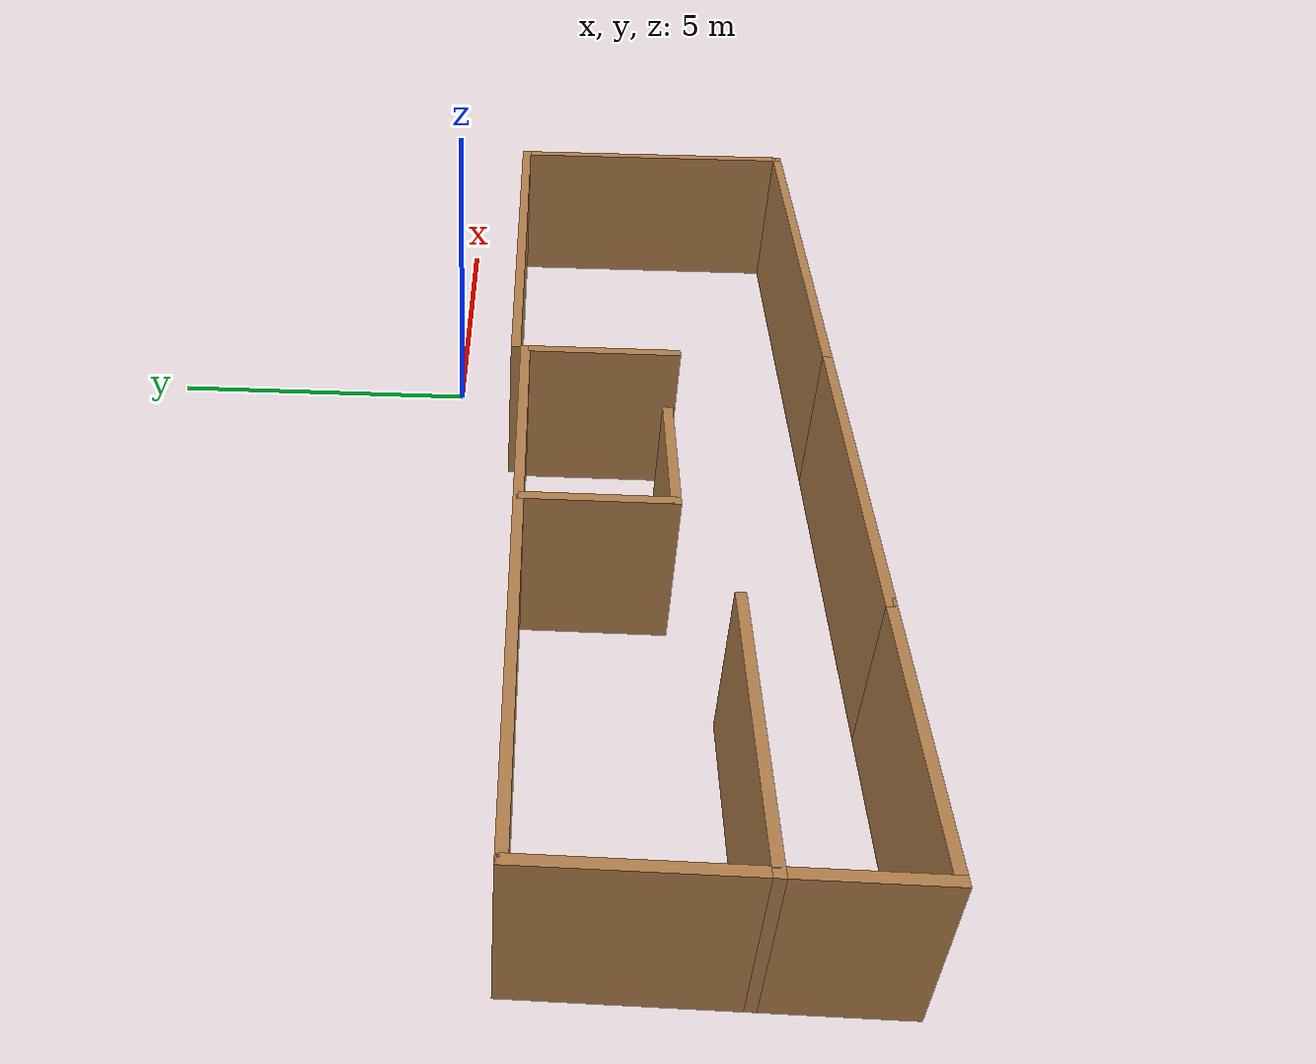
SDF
<?xml version='1.0'?>
<sdf version='1.6'>
  <model name='propmotor'>
    <pose frame=''>-3.455 -3.405 0 0 -0 0</pose>
    <link name='Wall_1'>
      <collision name='Wall_1_Collision'>
        <geometry>
          <box>
            <size>7 0.15 2.5</size>
          </box>
        </geometry>
        <pose frame=''>0 0 1.25 0 -0 0</pose>
      </collision>
      <visual name='Wall_1_Visual'>
        <pose frame=''>0 0 1.25 0 -0 0</pose>
        <geometry>
          <box>
            <size>7 0.15 2.5</size>
          </box>
        </geometry>
        <material>
          <script>
            <uri>file://media/materials/scripts/gazebo.material</uri>
            <name>Gazebo/Wood</name>
          </script>
          <ambient>1 1 1 1</ambient>
        </material>
        <meta>
          <layer>0</layer>
        </meta>
      </visual>
      <pose frame=''>4.85 -2.425 0 0 -0 0</pose>
    </link>
    <link name='Wall_11'>
      <collision name='Wall_11_Collision'>
        <geometry>
          <box>
            <size>2 0.15 2.5</size>
          </box>
        </geometry>
        <pose frame=''>0 0 1.25 0 -0 0</pose>
      </collision>
      <visual name='Wall_11_Visual'>
        <pose frame=''>0 0 1.25 0 -0 0</pose>
        <geometry>
          <box>
            <size>2 0.15 2.5</size>
          </box>
        </geometry>
        <material>
          <script>
            <uri>file://media/materials/scripts/gazebo.material</uri>
            <name>Gazebo/Wood</name>
          </script>
          <ambient>1 1 1 1</ambient>
        </material>
        <meta>
          <layer>0</layer>
        </meta>
      </visual>
      <pose frame=''>-8.275 -1.5 0 0 -0 -1.5708</pose>
    </link>
    <link name='Wall_12'>
      <collision name='Wall_12_Collision'>
        <geometry>
          <box>
            <size>4.25 0.15 2.5</size>
          </box>
        </geometry>
        <pose frame=''>0 0 1.25 0 -0 0</pose>
      </collision>
      <visual name='Wall_12_Visual'>
        <pose frame=''>0 0 1.25 0 -0 0</pose>
        <geometry>
          <box>
            <size>4.25 0.15 2.5</size>
          </box>
        </geometry>
        <material>
          <script>
            <uri>file://media/materials/scripts/gazebo.material</uri>
            <name>Gazebo/Wood</name>
          </script>
          <ambient>1 1 1 1</ambient>
        </material>
        <meta>
          <layer>0</layer>
        </meta>
      </visual>
      <pose frame=''>-6.225 -2.425 0 0 -0 0</pose>
    </link>
    <link name='Wall_14'>
      <collision name='Wall_14_Collision'>
        <geometry>
          <box>
            <size>2.5 0.15 2.5</size>
          </box>
        </geometry>
        <pose frame=''>0 0 1.25 0 -0 0</pose>
      </collision>
      <visual name='Wall_14_Visual'>
        <pose frame=''>0 0 1.25 0 -0 0</pose>
        <geometry>
          <box>
            <size>2.5 0.15 2.5</size>
          </box>
        </geometry>
        <material>
          <script>
            <uri>file://media/materials/scripts/gazebo.material</uri>
            <name>Gazebo/Wood</name>
          </script>
          <ambient>1 1 1 1</ambient>
        </material>
        <meta>
          <layer>0</layer>
        </meta>
      </visual>
      <pose frame=''>1.325 1.1 0 0 -0 -1.5708</pose>
    </link>
    <link name='Wall_16'>
      <collision name='Wall_16_Collision'>
        <geometry>
          <box>
            <size>2.25 0.15 2.5</size>
          </box>
        </geometry>
        <pose frame=''>0 0 1.25 0 -0 0</pose>
      </collision>
      <visual name='Wall_16_Visual'>
        <pose frame=''>0 0 1.25 0 -0 0</pose>
        <geometry>
          <box>
            <size>2.25 0.15 2.5</size>
          </box>
        </geometry>
        <material>
          <script>
            <uri>file://media/materials/scripts/gazebo.material</uri>
            <name>Gazebo/Wood</name>
          </script>
          <ambient>1 1 1 1</ambient>
        </material>
        <meta>
          <layer>0</layer>
        </meta>
      </visual>
      <pose frame=''>-2.3199 1.18161 0 0 -0 -1.5708</pose>
    </link>
    <link name='Wall_17'>
      <collision name='Wall_17_Collision'>
        <geometry>
          <box>
            <size>2.25 0.15 2.5</size>
          </box>
        </geometry>
        <pose frame=''>0 0 1.25 0 -0 0</pose>
      </collision>
      <visual name='Wall_17_Visual'>
        <pose frame=''>0 0 1.25 0 -0 0</pose>
        <geometry>
          <box>
            <size>2.25 0.15 2.5</size>
          </box>
        </geometry>
        <material>
          <script>
            <uri>file://media/materials/scripts/gazebo.material</uri>
            <name>Gazebo/Wood</name>
          </script>
          <ambient>1 1 1 1</ambient>
        </material>
        <meta>
          <layer>0</layer>
        </meta>
      </visual>
      <pose frame=''>-1.2699 0.13161 0 0 -0 0</pose>
    </link>
    <link name='Wall_2'>
      <collision name='Wall_2_Collision'>
        <geometry>
          <box>
            <size>5 0.15 2.5</size>
          </box>
        </geometry>
        <pose frame=''>0 0 1.25 0 -0 0</pose>
      </collision>
      <visual name='Wall_2_Visual'>
        <pose frame=''>0 0 1.25 0 -0 0</pose>
        <geometry>
          <box>
            <size>5 0.15 2.5</size>
          </box>
        </geometry>
        <material>
          <script>
            <uri>file://media/materials/scripts/gazebo.material</uri>
            <name>Gazebo/Wood</name>
          </script>
          <ambient>1 1 1 1</ambient>
        </material>
        <meta>
          <layer>0</layer>
        </meta>
      </visual>
      <pose frame=''>8.275 0 0 0 -0 1.5708</pose>
    </link>
    <link name='Wall_3'>
      <collision name='Wall_3_Collision'>
        <geometry>
          <box>
            <size>7 0.15 2.5</size>
          </box>
        </geometry>
        <pose frame=''>0 0 1.25 0 -0 0</pose>
      </collision>
      <visual name='Wall_3_Visual'>
        <pose frame=''>0 0 1.25 0 -0 0</pose>
        <geometry>
          <box>
            <size>7 0.15 2.5</size>
          </box>
        </geometry>
        <material>
          <script>
            <uri>file://media/materials/scripts/gazebo.material</uri>
            <name>Gazebo/Wood</name>
          </script>
          <ambient>1 1 1 1</ambient>
        </material>
        <meta>
          <layer>0</layer>
        </meta>
      </visual>
      <pose frame=''>4.85 2.425 0 0 -0 3.14159</pose>
    </link>
    <link name='Wall_5'>
      <collision name='Wall_5_Collision'>
        <geometry>
          <box>
            <size>5.75 0.15 2.5</size>
          </box>
        </geometry>
        <pose frame=''>0 0 1.25 0 -0 0</pose>
      </collision>
      <visual name='Wall_5_Visual'>
        <pose frame=''>0 0 1.25 0 -0 0</pose>
        <geometry>
          <box>
            <size>5.75 0.15 2.5</size>
          </box>
        </geometry>
        <material>
          <script>
            <uri>file://media/materials/scripts/gazebo.material</uri>
            <name>Gazebo/Wood</name>
          </script>
          <ambient>1 1 1 1</ambient>
        </material>
        <meta>
          <layer>0</layer>
        </meta>
      </visual>
      <pose frame=''>-1.375 -2.425 0 0 -0 3.14159</pose>
    </link>
    <link name='Wall_7'>
      <collision name='Wall_7_Collision'>
        <geometry>
          <box>
            <size>4.25 0.15 2.5</size>
          </box>
        </geometry>
        <pose frame=''>0 0 1.25 0 -0 0</pose>
      </collision>
      <visual name='Wall_7_Visual'>
        <pose frame=''>0 0 1.25 0 -0 0</pose>
        <geometry>
          <box>
            <size>4.25 0.15 2.5</size>
          </box>
        </geometry>
        <material>
          <script>
            <uri>file://media/materials/scripts/gazebo.material</uri>
            <name>Gazebo/Wood</name>
          </script>
          <ambient>1 1 1 1</ambient>
        </material>
        <meta>
          <layer>0</layer>
        </meta>
      </visual>
      <pose frame=''>-6.225 -0.575 0 0 -0 3.14159</pose>
    </link>
    <link name='Wall_8'>
      <collision name='Wall_8_Collision'>
        <geometry>
          <box>
            <size>3 0.15 2.5</size>
          </box>
        </geometry>
        <pose frame=''>0 0 1.25 0 -0 0</pose>
      </collision>
      <visual name='Wall_8_Visual'>
        <pose frame=''>0 0 1.25 0 -0 0</pose>
        <geometry>
          <box>
            <size>3 0.15 2.5</size>
          </box>
        </geometry>
        <material>
          <script>
            <uri>file://media/materials/scripts/gazebo.material</uri>
            <name>Gazebo/Wood</name>
          </script>
          <ambient>1 1 1 1</ambient>
        </material>
        <meta>
          <layer>0</layer>
        </meta>
      </visual>
      <pose frame=''>-8.275 0.85 0 0 -0 1.5708</pose>
    </link>
    <link name='Wall_9'>
      <collision name='Wall_9_Collision'>
        <geometry>
          <box>
            <size>9.75 0.15 2.5</size>
          </box>
        </geometry>
        <pose frame=''>0 0 1.25 0 -0 0</pose>
      </collision>
      <visual name='Wall_9_Visual'>
        <pose frame=''>0 0 1.25 0 -0 0</pose>
        <geometry>
          <box>
            <size>9.75 0.15 2.5</size>
          </box>
        </geometry>
        <material>
          <script>
            <uri>file://media/materials/scripts/gazebo.material</uri>
            <name>Gazebo/Wood</name>
          </script>
          <ambient>1 1 1 1</ambient>
        </material>
        <meta>
          <layer>0</layer>
        </meta>
      </visual>
      <pose frame=''>-3.475 2.275 0 0 -0 0</pose>
    </link>
    <static>1</static>
  </model>
</sdf>
